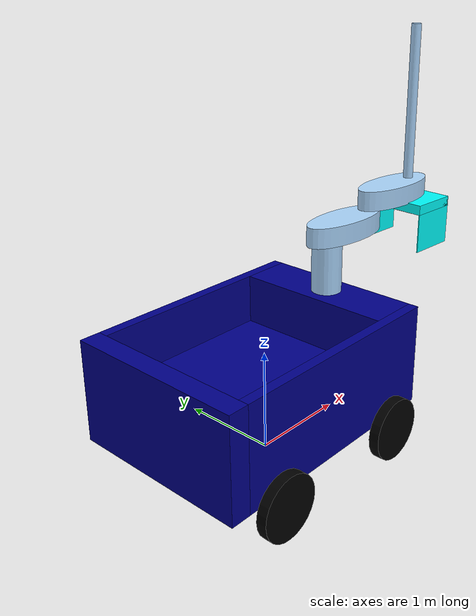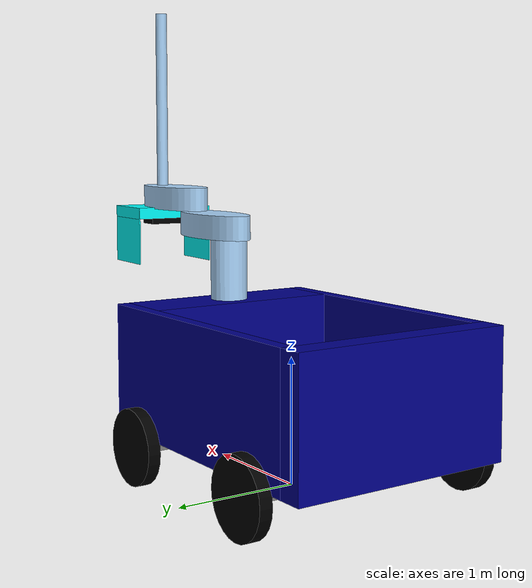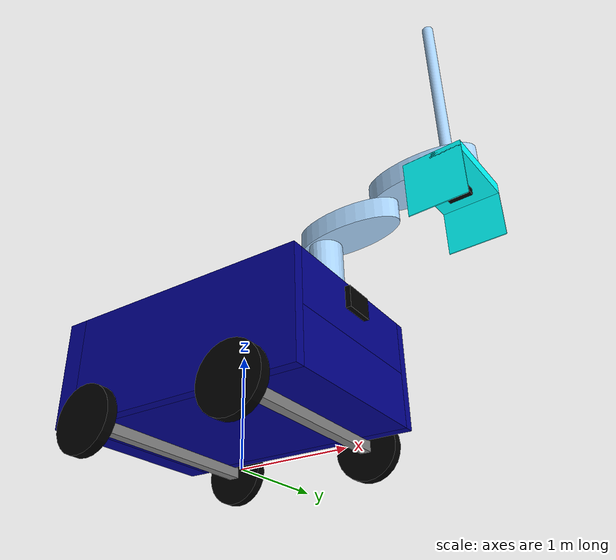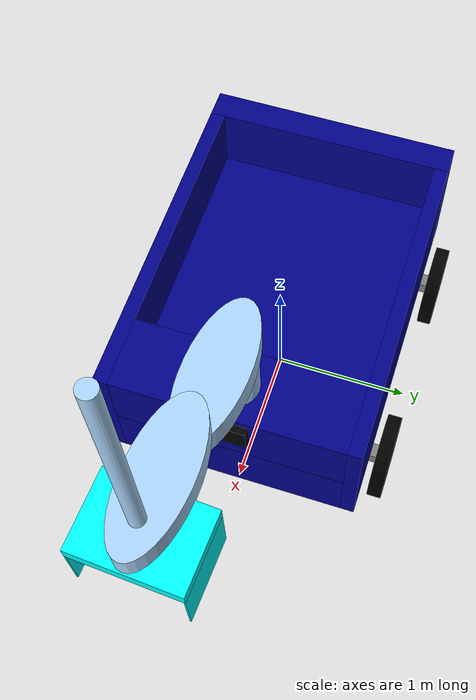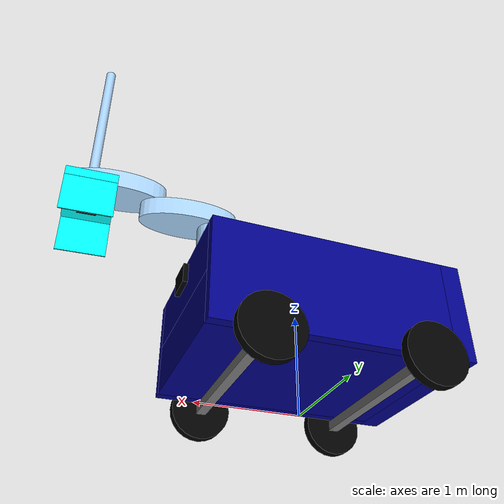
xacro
<?xml version="1.0"?>
<robot xmlns:xacro="http://www.ros.org/wiki/xacro" name="simple_rover">
    <xacro:arg name="initial_positions_file" default="initial_positions.yaml" />

    <!-- Import simple_rover urdf file -->
    <xacro:include filename="$(find simple_rover_description)/robots/robot.urdf.xacro" />

    <!-- Import control_xacro -->
    <xacro:include filename="simple_rover.srdf" />

    <!-- Import control_xacro -->
    <xacro:include filename="simple_rover.ros2_control.xacro" />

    <xacro:simple_rover_ros2_control name="ScaraArm" initial_positions_file="$(arg initial_positions_file)"/>

</robot>

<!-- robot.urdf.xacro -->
<robot name="simple_rover" xmlns:xacro="http://www.ros.org/wiki/xacro">

  <material name="Wheels">
    <color rgba="0.00000 0.00000 0.00000 1.00000"/> <!-- Black -->
  </material>

  <material name="Chasis">
    <color rgba="0.00000 0.00000 0.54510 1.00000"/> <!-- Dark Blue -->
  </material>

  <material name="Axels">
    <color rgba="0.50200 0.50200 0.50200 1.00000"/> <!-- Grey -->
  </material>

  <material name="Arm">
    <color rgba="0.67843 0.84705 1.00000 1.00000"/> <!-- Light Blue -->
  </material>

  <material name="Gripper">
    <color rgba="0.00000 1.00000 1.00000 1.00000"/> <!-- Bright Cyan -->
  </material>

  <material name="Sensors">
    <color rgba="0.00000 0.00000 0.00000 1.00000"/> <!-- Black -->
  </material>

  <!-- Includes -->
  <xacro:include filename="$(find simple_rover_description)/urdf/arm/gripper.urdf.xacro"/>
  <xacro:include filename="$(find simple_rover_description)/urdf/arm/scara.urdf.xacro"/>
  <xacro:include filename="$(find simple_rover_description)/urdf/base/robot_base.urdf.xacro"/>
  <xacro:include filename="$(find simple_rover_description)/urdf/sensors/camera.urdf.xacro"/>
  <xacro:include filename="$(find simple_rover_description)/urdf/sensors/imu_sensor.urdf.xacro"/>
  <xacro:include filename="$(find simple_rover_description)/urdf/sensors/sensor.urdf.xacro"/>
  <xacro:include filename="$(find simple_rover_description)/urdf/wheels/rover_wheels.urdf.xacro"/>

  <!-- Properties -->
  <!-- Front Left Wheel Offset -->
  <xacro:property name="FL_wheel_offset_x" value="-0.00000"/>
  <xacro:property name="FL_wheel_offset_y" value="1.00000"/>
  <xacro:property name="FL_wheel_offset_z" value="-0.00000"/>

  <!-- Front Right Wheel Offset -->
  <xacro:property name="FR_wheel_offset_x" value="-0.00000"/>
  <xacro:property name="FR_wheel_offset_y" value="-1.00000"/>
  <xacro:property name="FR_wheel_offset_z" value="-0.00000"/>

  <!-- Back Left Wheel Offset -->
  <xacro:property name="BL_wheel_offset_x" value="0.00000"/>
  <xacro:property name="BL_wheel_offset_y" value="1.00000"/>
  <xacro:property name="BL_wheel_offset_z" value="-0.00000"/>

  <!-- Back Right Wheel Offset -->
  <xacro:property name="BR_wheel_offset_x" value="0.00000"/>
  <xacro:property name="BR_wheel_offset_y" value="-1.00000"/>
  <xacro:property name="BR_wheel_offset_z" value="-0.00000"/>

  <!-- SCARA Arm Offset -->
  <xacro:property name="Scara_offset_x" value="0.00000"/>
  <xacro:property name="Scara_offset_y" value="0.00000"/>
  <xacro:property name="Scara_offset_z" value="0.50000"/>

  <!-- Gripper Offset -->
  <xacro:property name="Gripper_offset_x" value="-0.00000"/>
  <xacro:property name="Gripper_offset_y" value="-0.00000"/>
  <xacro:property name="Gripper_offset_z" value="-0.91476"/>

  <!-- Camera Offset -->
  <xacro:property name="Camera_offset_x" value="0.25000"/>
  <xacro:property name="Camera_offset_y" value="0.00000"/>
  <xacro:property name="Camera_offset_z" value="0.10000"/>

  <!-- IMU Offset -->
  <xacro:property name="IMU_offset_x" value="-0.00000"/>
  <xacro:property name="IMU_offset_y" value="-0.00000"/>
  <xacro:property name="IMU_offset_z" value="-0.00000"/>

  <!-- Sensor Offset -->
  <xacro:property name="Sensor_offset_x" value="-0.00000"/>
  <xacro:property name="Sensor_offset_y" value="-0.00000"/>
  <xacro:property name="Sensor_offset_z" value="-0.06000"/>

  <!-- Building -->
  <xacro:robot_base />

  <xacro:scara offset_x="${Scara_offset_x}" offset_y="${Scara_offset_y}" offset_z="${Scara_offset_z}" parent_link="Chasis.004_link"/>
  <xacro:gripper offset_x="${Gripper_offset_x}" offset_y="${Gripper_offset_y}" offset_z="${Gripper_offset_z}" parent_link="Cylinder.003_link"/>

  <xacro:rover_wheels offset_x="${FL_wheel_offset_x}" offset_y="${FL_wheel_offset_y}" offset_z="${FL_wheel_offset_z}" parent_link="Cube.002_link" RotationDirection="-1" identifier="FL"/>
  <xacro:rover_wheels offset_x="${FR_wheel_offset_x}" offset_y="${FR_wheel_offset_y}" offset_z="${FR_wheel_offset_z}" parent_link="Cube.002_link" RotationDirection="1" identifier="FR"/>
  <xacro:rover_wheels offset_x="${BL_wheel_offset_x}" offset_y="${BL_wheel_offset_y}" offset_z="${BL_wheel_offset_z}" parent_link="Cube.001_link" RotationDirection="-1" identifier="BL"/>
  <xacro:rover_wheels offset_x="${BR_wheel_offset_x}" offset_y="${BR_wheel_offset_y}" offset_z="${BR_wheel_offset_z}" parent_link="Cube.001_link" RotationDirection="1" identifier="BR"/>

  <xacro:camera offset_x="${Camera_offset_x}" offset_y="${Camera_offset_y}" offset_z="${Camera_offset_z}" parent_link="Chasis.004_link"/>
  <xacro:imu_sensor offset_x="${IMU_offset_x}" offset_y="${IMU_offset_y}" offset_z="${IMU_offset_z}" parent_link="base_link"/>
  <xacro:sensor offset_x="${Sensor_offset_x}" offset_y="${Sensor_offset_y}" offset_z="${Sensor_offset_z}" parent_link="Cube_link"/>

  <!-- sensores -->
  <!-- Gazebo ROS control plugins -->
  <xacro:include filename="$(find simple_rover_description)/urdf/ros2_control.urdf.xacro"/>
  <xacro:arg name="config_controllers" default="$(find simple_rover_description)/config/rover_controllers.yaml"/>
  <xacro:arg name="update_rate" default="100"/>
  <xacro:ros2_control/>
</robot>

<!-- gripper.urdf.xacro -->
<robot xmlns:xacro="http://www.ros.org/wiki/xacro">
  <xacro:macro name="gripper" params="offset_x offset_y offset_z parent_link">
    <!--First Joint-->
    <joint name="Cube_link_joint" type="continuous">
      <limit lower="0" upper="0" effort="5000.0000" velocity="100.00000"/>
      <origin rpy="0.00000 0.00000 0.00000" xyz="${offset_x} ${offset_y} ${offset_z}"/>
      <parent link="${parent_link}"/>
      <child link="Cube_link"/>
      <axis xyz="0.00000 0.00000 1.00000"/>
    </joint>

    <!--First Link-->
    <link name="Cube_link">
      <collision name="Cube_collision">
        <origin rpy="0.00000 0.00000 0.00000" xyz="-0.00099 -0.00000 -0.00000"/>
        <geometry>
          <box size="0.50000 0.70000 0.10000"/>
        </geometry>
      </collision>
      <inertial>
        <inertia ixx="0.04167" ixy="0.00000" ixz="0.00000" iyy="0.02167" iyz="0.00000" izz="0.06167"/>
        <origin rpy="0.00000 0.00000 0.00000" xyz="-0.00099 -0.00000 -0.00000"/>
        <mass value="1.00000"/>
      </inertial>
      <visual name="Cube">
        <origin rpy="0.00000 0.00000 0.00000" xyz="-0.00099 0.00000 -0.00000"/>
        <material name="Gripper"/>
        <geometry>
          <box size="0.50000 0.70000 0.10000"/>
        </geometry>
      </visual>
    </link>

    <!--Rest of the Joints-->
    <joint name="Cube.003_link_joint" type="prismatic">
      <limit lower="-0.35000" upper="0.00000" effort="5000.0000" velocity="100.00000"/>
      <origin rpy="1.57080 0.00000 0.00000" xyz="-0.00000 -0.34500 -0.20148"/>
      <parent link="Cube_link"/>
      <child link="Cube.003_link"/>
      <axis xyz="0.00000 0.00000 1.00000"/>
    </joint>

    <joint name="Cube.004_link_joint" type="prismatic">
      <limit lower="0.00000" upper="0.35000" effort="5000.0000" velocity="100.00000"/>
      <origin rpy="1.57080 0.00000 0.00000" xyz="-0.00000 0.34482 -0.20313"/>
      <parent link="Cube_link"/>
      <child link="Cube.004_link"/>
      <axis xyz="0.00000 0.00000 1.00000"/>
    </joint>

    <!--Rest of the Link-->
    <link name="Cube.003_link">
      <collision name="Cube.003_collision">
        <origin rpy="-1.57080 -0.00000 0.00000" xyz="-0.00099 -0.00000 -0.00000"/>
        <geometry>
          <box size="0.50000 0.01000 0.50000"/>
        </geometry>
        <surface>
          <friction>
            <ode>
              <mu>2.000000</mu>
              <mu2>2.000000</mu2>
              <slip1>0.000000</slip1>
              <slip2>0.000000</slip2>
            </ode>
          </friction>
        </surface>
      </collision>
      <inertial>
        <inertia ixx="0.02084" ixy="0.00000" ixz="0.00000" iyy="0.04167" iyz="-0.00000" izz="0.02084"/>
        <origin rpy="0.00000 0.00000 0.00000" xyz="-0.00099 0.00000 0.00000"/>
        <mass value="1.00000"/>
      </inertial>
      <visual name="Cube.003">
        <origin rpy="-1.57080 -0.00000 0.00000" xyz="-0.00099 -0.00000 0.00000"/>
        <material name="Gripper"/>
        <geometry>
          <box size="0.50000 0.01000 0.50000"/>
        </geometry>
      </visual>
    </link>

    <link name="Cube.004_link">
      <collision name="Cube.004_collision">
        <origin rpy="-1.57080 -0.00000 0.00000" xyz="-0.00099 0.00000 0.00000"/>
        <geometry>
          <box size="0.50000 0.01000 0.50000"/>
        </geometry>
        <surface>
          <friction>
            <ode>
              <mu>2.000000</mu>
              <mu2>2.000000</mu2>
              <slip1>0.000000</slip1>
              <slip2>0.000000</slip2>
            </ode>
          </friction>
        </surface>
      </collision>
      <inertial>
        <inertia ixx="0.02084" ixy="0.00000" ixz="0.00000" iyy="0.04167" iyz="-0.00000" izz="0.02084"/>
        <origin rpy="0.00000 0.00000 0.00000" xyz="-0.00099 0.00000 0.00000"/>
        <mass value="1.00000"/>
      </inertial>
      <visual name="Cube.004">
        <origin rpy="-1.57080 -0.00000 0.00000" xyz="-0.00099 0.00000 0.00000"/>
        <material name="Gripper"/>
        <geometry>
          <box size="0.50000 0.01000 0.50000"/>
        </geometry>
      </visual>
    </link>

  </xacro:macro>
</robot>

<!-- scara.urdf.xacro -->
<robot xmlns:xacro="http://www.ros.org/wiki/xacro">

  <xacro:macro name="scara" params="offset_x offset_y offset_z parent_link">

    <!--First Joint-->
    <joint name="Cylinder_link_joint" type="fixed">
      <limit lower="0" upper="0" effort="5000.0000" velocity="100.00000"/>
      <origin rpy="0.00000 0.00000 0.00000" xyz="${offset_x} ${offset_y} ${offset_z}"/>
      <parent link="${parent_link}"/>
      <child link="Cylinder_link"/>
      <axis xyz="0.00000 0.00000 1.00000"/>
    </joint>

    <!--First Link-->
    <link name="Cylinder_link">
      <collision name="Cylinder_collision">
        <origin rpy="0.00000 0.00000 0.00000" xyz="-0.00000 -0.00000 0.00000"/>
        <geometry>
          <cylinder radius="0.15000" length="0.50000"/>
        </geometry>
      </collision>
      <inertial>
        <inertia ixx="0.05292" ixy="0.00000" ixz="0.00000" iyy="0.05292" iyz="0.00000" izz="0.02250"/>
        <origin rpy="0.00000 0.00000 0.00000" xyz="-0.00000 -0.00000 0.00000"/>
        <mass value="2.00000"/>
      </inertial>
      <visual name="Cylinder">
        <origin rpy="0.00000 0.00000 0.00000" xyz="-0.00000 -0.00000 -0.00000"/>
        <material name="Arm"/>
        <geometry>
          <cylinder radius="0.15000" length="0.50000"/>
        </geometry>
      </visual>
    </link>

    <!--Rest of the Joints-->
    <joint name="Cylinder.001_link_joint" type="revolute">
      <limit lower="-3.14000" upper="3.14000" effort="5000.0000" velocity="100.00000"/>
      <origin rpy="0.00000 0.00000 -0.05721" xyz="-0.00000 -0.00000 0.34744"/>
      <parent link="Cylinder_link"/>
      <child link="Cylinder.001_link"/>
      <axis xyz="0.00000 0.00000 1.00000"/>
    </joint>

    <joint name="Cylinder.002_link_joint" type="revolute">
      <limit lower="-3.14000" upper="3.14000" effort="5000.0000" velocity="100.00000"/>
      <origin rpy="0.00000 0.00000 0.00000" xyz="0.61513 -0.00000 0.20000"/>
      <parent link="Cylinder.001_link"/>
      <child link="Cylinder.002_link"/>
      <axis xyz="0.00000 0.00000 1.00000"/>
    </joint>

    <joint name="Cylinder.003_link_joint" type="prismatic">
      <limit lower="-1.75000" upper="0.00000" effort="5000.0000" velocity="100.00000"/>
      <origin rpy="0.00000 0.00000 -0.00000" xyz="0.64476 -0.00000 0.77677"/>
      <parent link="Cylinder.002_link"/>
      <child link="Cylinder.003_link"/>
      <axis xyz="0.00000 0.00000 1.00000"/>
    </joint>

    <!--Rest of the Links-->
    <link name="Cylinder.001_link">
      <collision name="Cylinder.001_collision">
        <origin rpy="0.00000 0.00000 0.00000" xyz="0.25000 -0.00000 0.00000"/>
        <geometry>
          <mesh filename="file://$(find simple_rover_description)/meshes/dae/Cylinder.009.dae" scale="0.50000 0.20000 0.10000"/>
        </geometry>
      </collision>
      <inertial>
        <inertia ixx="0.13167" ixy="0.00000" ixz="0.00000" iyy="0.13167" iyz="0.00000" izz="0.25000"/>
        <origin rpy="0.00000 0.00000 0.00000" xyz="0.25000 -0.00000 -0.00000"/>
        <mass value="2.00000"/>
      </inertial>
      <visual name="Cylinder.001">
        <origin rpy="0.00000 0.00000 -0.00000" xyz="0.25000 -0.00000 -0.00000"/>
        <material name="Arm"/>
        <geometry>
          <mesh filename="file://$(find simple_rover_description)/meshes/dae/Cylinder.009.dae" scale="0.50000 0.20000 0.10000"/>
        </geometry>
      </visual>
    </link>

    <link name="Cylinder.002_link">
      <collision name="Cylinder.002_collision">
        <origin rpy="0.00000 0.00000 -0.00000" xyz="0.38486 0.00000 -0.00000"/>
        <geometry>
          <mesh filename="file://$(find simple_rover_description)/meshes/dae/Cylinder.010.dae" scale="0.50000 0.20000 0.10000"/>
        </geometry>
      </collision>
      <inertial>
        <inertia ixx="0.13167" ixy="0.00000" ixz="0.00000" iyy="0.13167" iyz="0.00000" izz="0.25000"/>
        <origin rpy="0.00000 0.00000 0.00000" xyz="0.38486 0.00000 -0.00000"/>
        <mass value="2.00000"/>
      </inertial>
      <visual name="Cylinder.002">
        <origin rpy="0.00000 0.00000 0.00000" xyz="0.38486 0.00000 -0.00000"/>
        <material name="Arm"/>
        <geometry>
          <mesh filename="file://$(find simple_rover_description)/meshes/dae/Cylinder.010.dae" scale="0.50000 0.20000 0.10000"/>
        </geometry>
      </visual>
    </link>

    <link name="Cylinder.003_link">
      <collision name="Cylinder.003_collision">
        <origin rpy="0.00000 0.00000 0.00000" xyz="-0.00099 -0.00000 -0.00000"/>
        <geometry>
          <cylinder radius="0.05000" length="1.75000"/>
        </geometry>
      </collision>
      <inertial>
        <inertia ixx="0.13625" ixy="0.00000" ixz="0.00000" iyy="0.13625" iyz="0.00000" izz="0.00250"/>
        <origin rpy="0.00000 0.00000 0.00000" xyz="-0.00099 0.00000 -0.00000"/>
        <mass value="2.00000"/>
      </inertial>
      <visual name="Cylinder.003">
        <origin rpy="0.00000 0.00000 -0.00000" xyz="-0.00099 0.00000 -0.00000"/>
        <material name="Arm"/>
        <geometry>
          <cylinder radius="0.05000" length="1.75000"/>
        </geometry>
      </visual>
    </link>

  </xacro:macro>
</robot>

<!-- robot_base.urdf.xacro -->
<robot xmlns:xacro="http://www.ros.org/wiki/xacro">

  <xacro:macro name="robot_base" params="">
    <!-- base_footprint joint -->
    <link name="base_footprint"/>

    <!-- Base chasis joint -->
    <joint name="Base_link_joint" type="fixed">
      <origin rpy="0.00000 0.00000 0.00000" xyz="0.00000 0.00000 0.60000"/>
      <parent link="base_footprint"/>
      <child link="base_link"/>
    </joint>

    <!-- Base chasis link -->
    <link name="base_link">
      <collision name="Chasis.001_collision">
        <origin rpy="0.00000 0.00000 0.00000" xyz="0.00000 0.00000 0.00000"/>
        <geometry>
          <box size="2.30000 1.60000 0.50000"/>
        </geometry>
      </collision>
      <inertial>
        <inertia ixx="23.41667" ixy="0.00000" ixz="0.00000" iyy="46.16666" iyz="0.00000" izz="65.41666"/>
        <origin rpy="0.00000 0.00000 0.00000" xyz="-0.00000 0.00000 -0.00000"/>
        <mass value="100.00000"/>
      </inertial>
      <visual name="Chasis.001">
        <origin rpy="0.00000 0.00000 0.00000" xyz="-0.00000 0.00000 0.00000"/>
        <material name="Chasis"/>
        <geometry>
          <box size="2.30000 1.60000 0.50000"/>
        </geometry>
      </visual>
    </link>

    <!-- Chasis joint -->
    <joint name="Chasis.002_link_joint" type="fixed">
      <origin rpy="0.00000 0.00000 0.00000" xyz="-1.25000 0.00000 0.25000"/>
      <parent link="base_link"/>
      <child link="Chasis.002_link"/>
    </joint>

    <joint name="Chasis.003_link_joint" type="fixed">
      <origin rpy="0.00000 0.00000 0.00000" xyz="0.00000 -0.85000 0.25000"/>
      <parent link="base_link"/>
      <child link="Chasis.003_link"/>
    </joint>

    <joint name="Chasis.004_link_joint" type="fixed">
      <origin rpy="0.00000 0.00000 0.00000" xyz="0.90000 0.00000 0.50000"/>
      <parent link="base_link"/>
      <child link="Chasis.004_link"/>
    </joint>

    <joint name="Chasis.001_link_joint" type="fixed">
      <origin rpy="0.00000 0.00000 0.00000" xyz="-0.00000 0.85000 0.25000"/>
      <parent link="base_link"/>
      <child link="Chasis.001_link"/>
    </joint>

    <joint name="Cube.001_link_joint" type="fixed">
      <origin rpy="0.00000 0.00000 0.00000" xyz="-0.83737 0.00000 -0.29438"/>
      <parent link="base_link"/>
      <child link="Cube.001_link"/>
    </joint>

    <joint name="Cube.002_link_joint" type="fixed">
      <origin rpy="0.00000 0.00000 0.00000" xyz="0.66263 0.00000 -0.29438"/>
      <parent link="base_link"/>
      <child link="Cube.002_link"/>
    </joint>

    <!-- Chasis link -->
    <link name="Chasis.002_link">
      <collision name="Chasis.002_collision">
        <origin rpy="0.00000 0.00000 0.00000" xyz="0.00000 0.00000 0.00000"/>
        <geometry>
          <box size="0.20000 1.80000 1.00000"/>
        </geometry>
      </collision>
      <inertial>
        <inertia ixx="0.35333" ixy="0.00000" ixz="0.00000" iyy="0.08667" iyz="0.00000" izz="0.27333"/>
        <origin rpy="0.00000 0.00000 0.00000" xyz="0.00000 0.00000 -0.00000"/>
        <mass value="1.00000"/>
      </inertial>
      <visual name="Chasis.002">
        <origin rpy="0.00000 0.00000 0.00000" xyz="0.00000 0.00000 -0.00000"/>
        <material name="Chasis"/>
        <geometry>
          <box size="0.20000 1.80000 1.00000"/>
        </geometry>
      </visual>
    </link>

    <link name="Chasis.003_link">
      <collision name="Chasis.003_collision">
        <origin rpy="0.00000 0.00000 0.00000" xyz="-0.00000 -0.00000 -0.00000"/>
        <geometry>
          <box size="2.30000 0.10000 1.00000"/>
        </geometry>
      </collision>
      <inertial>
        <inertia ixx="0.08417" ixy="0.00000" ixz="0.00000" iyy="0.52417" iyz="0.00000" izz="0.44167"/>
        <origin rpy="0.00000 0.00000 0.00000" xyz="-0.00000 0.00000 -0.00000"/>
        <mass value="1.00000"/>
      </inertial>
      <visual name="Chasis.003">
        <origin rpy="0.00000 0.00000 0.00000" xyz="0.00000 -0.00000 -0.00000"/>
        <material name="Chasis"/>
        <geometry>
          <box size="2.30000 0.10000 1.00000"/>
        </geometry>
      </visual>
    </link>

    <link name="Chasis.004_link">
      <collision name="Chasis.004_collision">
        <origin rpy="0.00000 0.00000 0.00000" xyz="0.00000 0.00000 -0.00000"/>
        <geometry>
          <box size="0.50000 1.60000 0.50000"/>
        </geometry>
      </collision>
      <inertial>
        <inertia ixx="0.70250" ixy="0.00000" ixz="0.00000" iyy="0.12500" iyz="0.00000" izz="0.70250"/>
        <origin rpy="0.00000 0.00000 0.00000" xyz="0.00000 0.00000 -0.00000"/>
        <mass value="3.00000"/>
      </inertial>
      <visual name="Chasis.004">
        <origin rpy="0.00000 0.00000 0.00000" xyz="-0.00000 0.00000 -0.00000"/>
        <material name="Chasis"/>
        <geometry>
          <box size="0.50000 1.60000 0.50000"/>
        </geometry>
      </visual>
    </link>

    <link name="Chasis.001_link">
      <collision name="Chasis.001_collision">
        <origin rpy="0.00000 0.00000 0.00000" xyz="-0.00000 0.00000 -0.00000"/>
        <geometry>
          <box size="2.30000 0.10000 1.00000"/>
        </geometry>
      </collision>
      <inertial>
        <inertia ixx="0.25250" ixy="0.00000" ixz="0.00000" iyy="1.57250" iyz="0.00000" izz="1.32500"/>
        <origin rpy="0.00000 0.00000 0.00000" xyz="0.00000 0.00000 -0.00000"/>
        <mass value="3.00000"/>
      </inertial>
      <visual name="Chasis">
        <origin rpy="0.00000 0.00000 0.00000" xyz="0.00000 0.00000 -0.00000"/>
        <material name="Chasis"/>
        <geometry>
          <box size="2.30000 0.10000 1.00000"/>
        </geometry>
      </visual>
    </link>

    <link name="Cube.001_link">
      <collision name="Cube.001_collision">
        <origin rpy="0.00000 0.00000 0.00000" xyz="0.00000 0.00000 -0.00000"/>
        <geometry>
          <box size="0.10000 1.90000 0.10000"/>
        </geometry>
      </collision>
      <inertial>
        <inertia ixx="1.50833" ixy="0.00000" ixz="0.00000" iyy="0.00833" iyz="0.00000" izz="1.50833"/>
        <origin rpy="0.00000 0.00000 0.00000" xyz="0.00000 0.00000 -0.00000"/>
        <mass value="5.00000"/>
      </inertial>
      <visual name="Cube.001">
        <origin rpy="0.00000 0.00000 0.00000" xyz="0.00000 0.00000 -0.00000"/>
        <material name="Axels"/>
        <geometry>
          <box size="0.10000 1.90000 0.10000"/>
        </geometry>
      </visual>
    </link>

    <link name="Cube.002_link">
      <collision name="Cube.002_collision">
        <origin rpy="0.00000 0.00000 0.00000" xyz="-0.00000 0.00000 -0.00000"/>
        <geometry>
          <box size="0.10000 1.90000 0.10000"/>
        </geometry>
      </collision>
      <inertial>
        <inertia ixx="1.50833" ixy="0.00000" ixz="0.00000" iyy="0.00833" iyz="0.00000" izz="1.50833"/>
        <origin rpy="0.00000 0.00000 0.00000" xyz="-0.00000 0.00000 -0.00000"/>
        <mass value="5.00000"/>
      </inertial>
      <visual name="Cube.002">
        <origin rpy="0.00000 0.00000 0.00000" xyz="-0.00000 0.00000 -0.00000"/>
        <material name="Axels"/>
        <geometry>
          <box size="0.10000 1.90000 0.10000"/>
        </geometry>
      </visual>
    </link>
  </xacro:macro>
</robot>

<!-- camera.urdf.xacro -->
<robot xmlns:xacro="http://wiki.ros.org/xacro">

  <xacro:macro name="camera" params="offset_x offset_y offset_z parent_link" >

    <joint name="camera_link_joint" type="fixed">
      <origin rpy="-3.14159 3.14159 -3.14159" xyz="${offset_x} ${offset_y} ${offset_z}"/>
      <parent link="${parent_link}"/>
      <child link="camera_link"/>
    </joint>

    <link name="camera_link">
      <visual name="camera">
        <origin rpy="-3.14159 0.00000 3.14159" xyz="0.00000 0.00000 0.00000"/>
        <material name="Sensors"/>
        <geometry>
          <box size="0.10000 0.30000 0.20000"/>
        </geometry>
      </visual>
    </link>

    <gazebo reference="camera_link">
      <sensor name="camera" type="camera">
        <visualize>true</visualize>
        <update_rate>30</update_rate>
        <topic>/front_camera/image</topic>
        <camera>
          <horizontal_fov>1.57</horizontal_fov>
          <image>
            <width>640</width>
            <height>480</height>
            <format>R8G8B8</format>
          </image>
          <clip>
            <near>0.10</near>
            <far>15.0</far>
          </clip>
          <noise>
            <type>gaussian</type>
            <mean>0.0</mean>
            <stddev>0.007</stddev>
          </noise>
          <optical_frame_id>camera_link</optical_frame_id>
        </camera>
      </sensor>
    </gazebo>

  </xacro:macro>
</robot>

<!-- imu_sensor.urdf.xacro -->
<robot xmlns:xacro="http://wiki.ros.org/xacro">

  <xacro:macro name="imu_sensor" params="offset_x offset_y offset_z parent_link" >

    <joint name="IMU_link_joint" type="fixed">
      <origin rpy="0.00000 0.00000 0.00000" xyz="${offset_x} ${offset_y} ${offset_z}"/>
      <parent link="${parent_link}"/>
      <child link="IMU_link"/>
    </joint>

    <link name="IMU_link">
      <visual name="IMU">
        <origin rpy="0.00000 0.00000 0.00000" xyz="0.00000 0.00000 0.00000"/>
        <material name="Sensors"/>
        <geometry>
          <box size="0.10000 0.10000 0.10000"/>
        </geometry>
      </visual>
    </link>

    <gazebo reference="IMU_link">
      <sensor name="IMU" type="imu">
        <always_on>1</always_on>
        <update_rate>30</update_rate>
        <topic>"imu_data"</topic>
      </sensor>
    </gazebo>

  </xacro:macro>
</robot>

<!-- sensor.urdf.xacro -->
<robot xmlns:xacro="http://wiki.ros.org/xacro">

  <xacro:macro name="sensor"  params="offset_x offset_y offset_z parent_link">

    <joint name="sensors_link_joint" type="fixed">
      <origin rpy="-3.14159 1.57080 -3.14159" xyz="${offset_x} ${offset_y} ${offset_z}"/>
      <parent link="${parent_link}"/>
      <child link="sensors_link"/>
    </joint>

    <link name="sensors_link">
      <visual name="sensors">
        <origin rpy="3.14159 0.00000 3.14159" xyz="0.00000 0.00000 0.00000"/>
        <material name="Sensors"/>
        <geometry>
          <box size="0.10000 0.30000 0.20000"/>
        </geometry>
      </visual>
    </link>

    <gazebo reference="sensors_link">
      <sensor name="sensors" type="camera">
        <visualize>true</visualize>
        <update_rate>30</update_rate>
        <topic>/arm_camera/image</topic>
        <camera>
          <horizontal_fov>1.57</horizontal_fov>
          <image>
            <width>640</width>
            <height>480</height>
            <format>R8G8B8</format>
          </image>
          <clip>
            <near>0.10</near>
            <far>15.0</far>
          </clip>
          <noise>
            <type>gaussian</type>
            <mean>0.0</mean>
            <stddev>0.007</stddev>
          </noise>
          <optical_frame_id>sensors_link</optical_frame_id>
        </camera>
      </sensor>
    </gazebo>

  </xacro:macro>
</robot>

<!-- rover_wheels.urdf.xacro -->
<robot xmlns:xacro="http://www.ros.org/wiki/xacro">
  <xacro:macro name="rover_wheels" params="offset_x offset_y offset_z parent_link RotationDirection identifier">
    <!--Joint-->
    <joint name="${identifier}_Wheel_joint" type="continuous">
      <limit lower="0" upper="0" effort="5000.0000" velocity="100.00000"/>
      <origin rpy="1.57080 0.00000 0.00000" xyz="${offset_x} ${offset_y} ${offset_z}"/>
      <parent link="${parent_link}"/>
      <child link="${identifier}_Wheel_link"/>
      <axis xyz="0.00000 0.00000 ${RotationDirection}"/>
    </joint>

    <!--Link-->
    <link name="${identifier}_Wheel_link">
      <collision name="Wheel_collision">
        <origin rpy="0.00000 0.00000 0.00000" xyz="-0.00000 -0.00000 -0.00000"/>
        <geometry>
          <cylinder radius="0.30000" length="0.10000"/>
        </geometry>
        <surface>
          <friction>
            <ode>
              <mu>1.000000</mu>
              <mu2>1.000000</mu2>
              <fdir>0.000000 0.000000 1.000000</fdir>
              <slip1>0.500000</slip1>
              <slip2>0.500000</slip2>
            </ode>
          </friction>
        </surface>
      </collision>
      <inertial>
        <inertia ixx="0.02333" ixy="0.00000" ixz="0.00000" iyy="0.04500" iyz="0.00000" izz="0.02333"/>
        <origin rpy="0.00000 0.00000 0.00000" xyz="-0.00000 0.00000 -0.00000"/>
        <mass value="1.00000"/>
      </inertial>
      <visual name="${identifier}_Wheel">
        <origin rpy="0.00000 0.00000 0.00000" xyz="0.00000 0.00000 -0.00000"/>
        <material name="Wheels"/>
        <geometry>
          <cylinder radius="0.30000" length="0.10000"/>
        </geometry>
      </visual>
    </link>

  </xacro:macro>
</robot>
